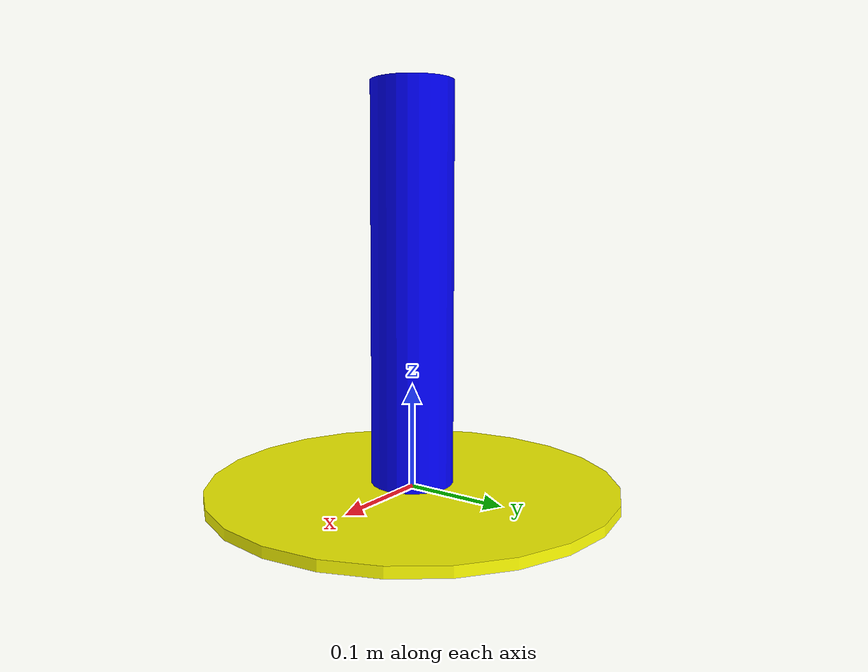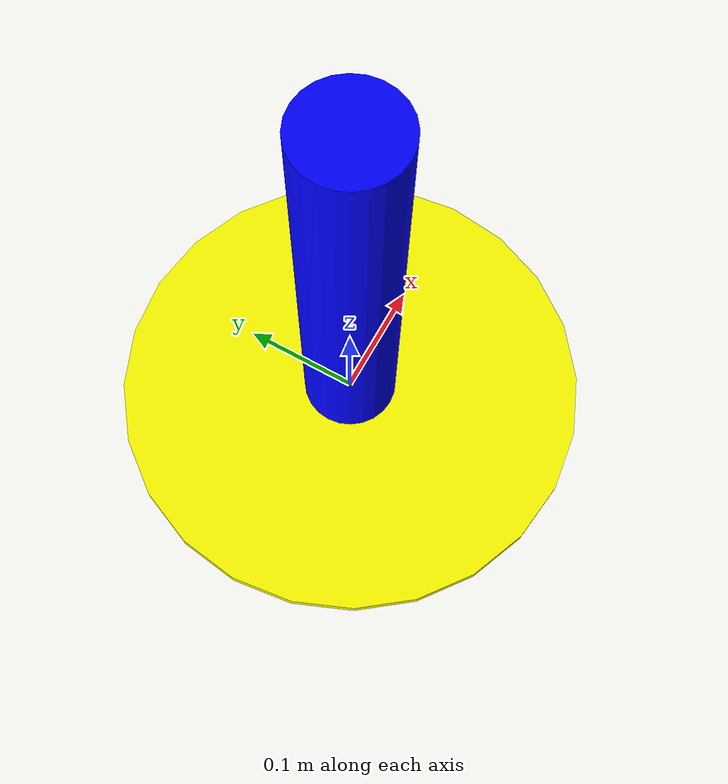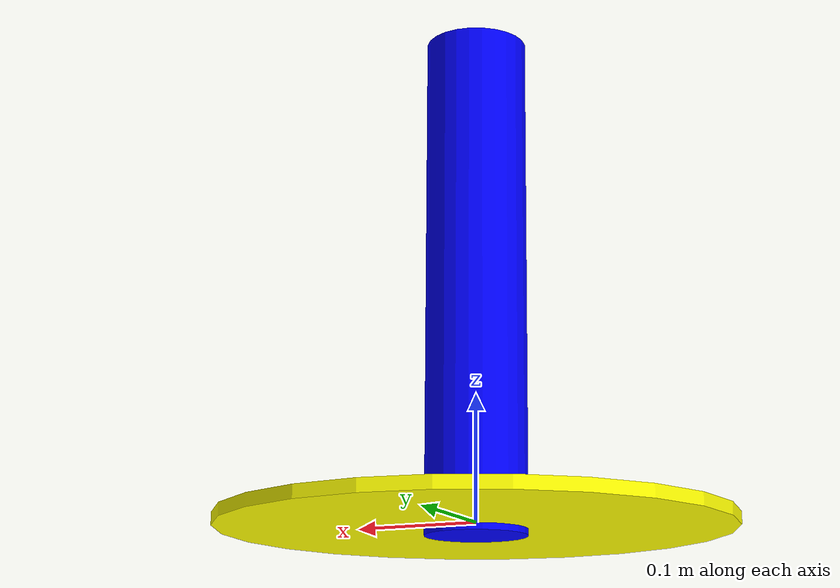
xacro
<?xml version="1.0"?>
<robot xmlns:xacro="http://www.ros.org/wiki/xacro"  name="simple_robot">

<xacro:property name="base_link_length" value="0.01" />
<xacro:property name="base_link_radius" value="0.2" />

<xacro:macro name="inertial_matrix" params="mass">
  <inertial>
       <mass value="${mass}" />
       <inertia ixx="0.5" ixy="0.0" ixz="0.0" iyy="0.5" iyz="0.0" izz="0.5" />
   </inertial>
</xacro:macro>

    <link name="base_link">
        <visual>
            <geometry>
                <cylinder length="${base_link_length}" radius="${base_link_radius}"/>
            </geometry>
            <origin rpy="0 0 0" xyz="0 0 0"/>
            <material name="yellow">
                <color rgba="1 1 0 1"/>
            </material>
        </visual>

        <collision>
            <geometry>
                <cylinder length="${base_link_length}" radius="${base_link_radius}"/>
            </geometry>
            <origin rpy="0 0 0" xyz="0 0 0"/>
        </collision>

        <xacro:inertial_matrix mass="1"/>
    </link>

    <joint name="pan_joint" type="revolute">
        <parent link="base_link"/>
        <child link="pan_link"/>
        <origin xyz="0 0 0.1"/>
        <axis xyz="0 0 1" />
        <limit effort="300" velocity="0.1" lower="-3.14" upper="3.14"/>
        <dynamics damping="50" friction="1"/>
    </joint>

    <link name="pan_link">
        <visual>
            <geometry>
                <cylinder length="0.4" radius="0.04"/>
            </geometry>
            <origin rpy="0 0 0" xyz="0 0 0.09"/>
            <material name="red">
                <color rgba="0 0 1 1"/>
            </material>
        </visual>

        <collision>
            <geometry>
                <cylinder length="${0.4}" radius="0.04"/>
            </geometry>
            <origin rpy="0 0 0" xyz="0 0 0"/>
        </collision>

        <xacro:inertial_matrix mass="1"/>
    </link>
</robot>
